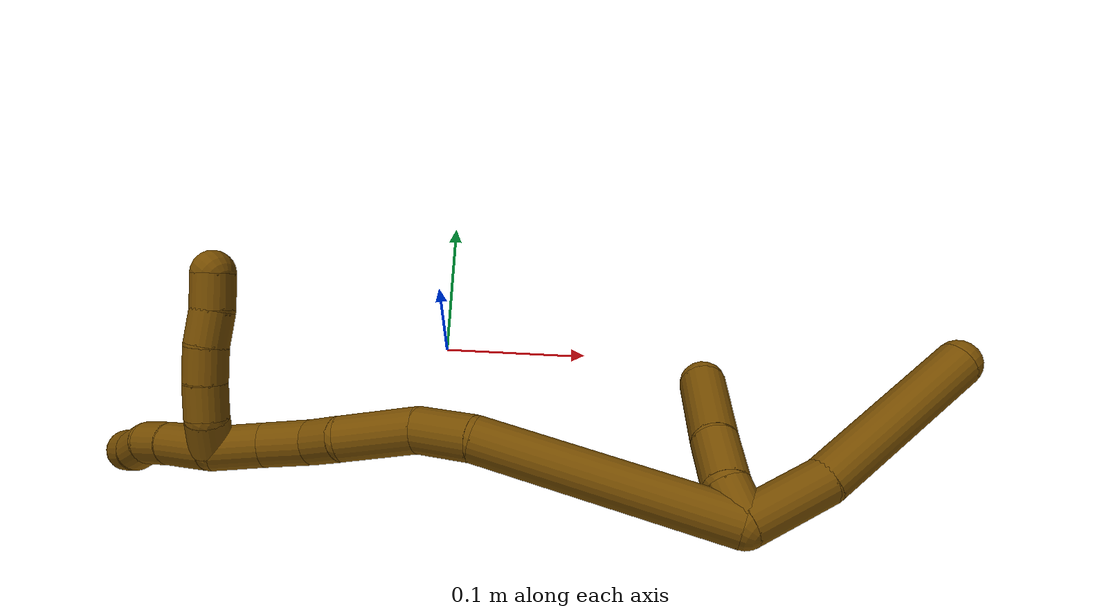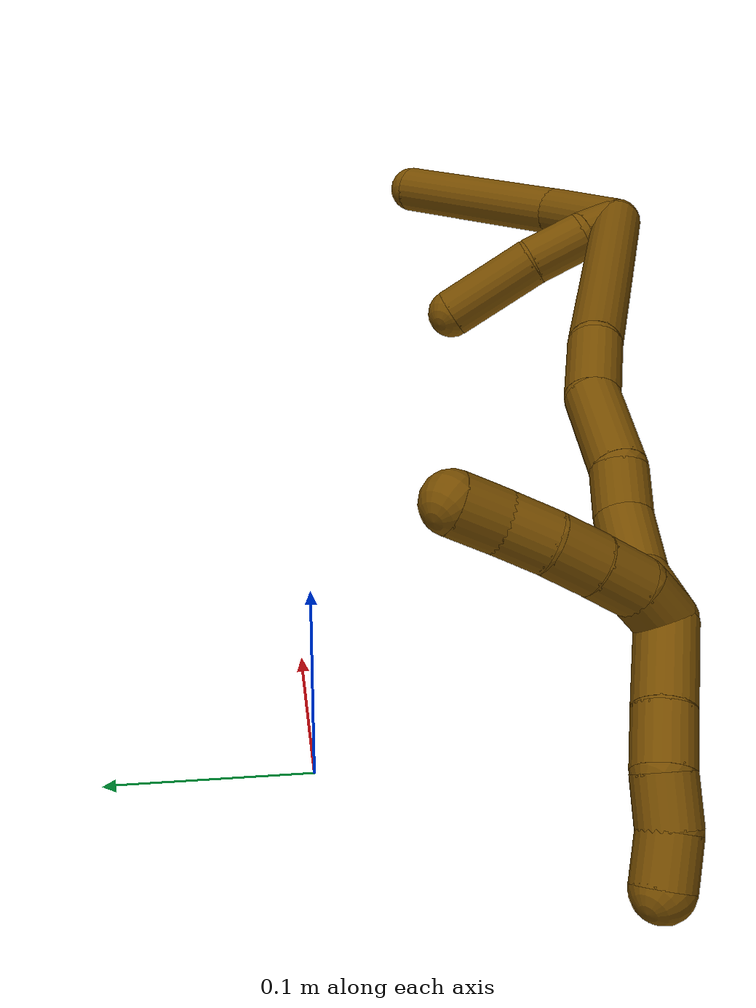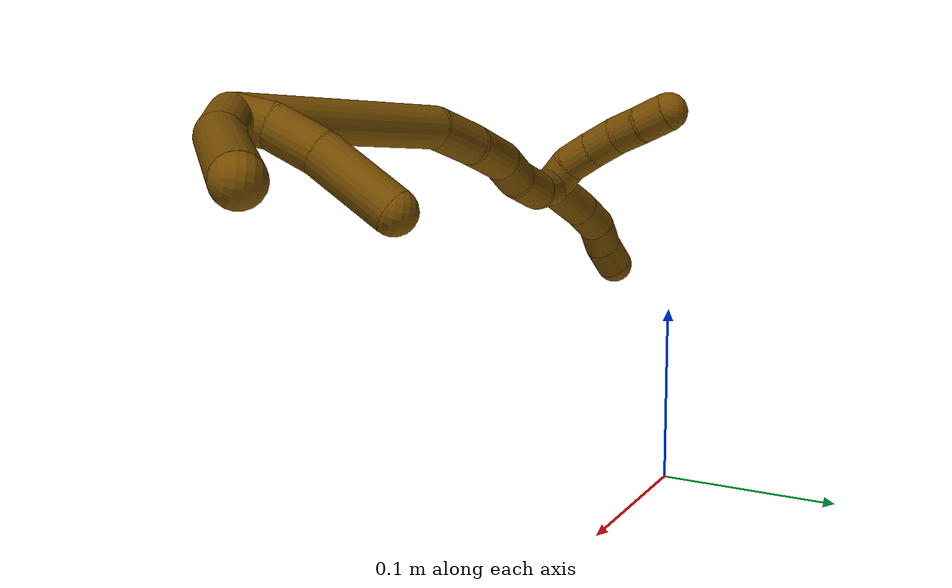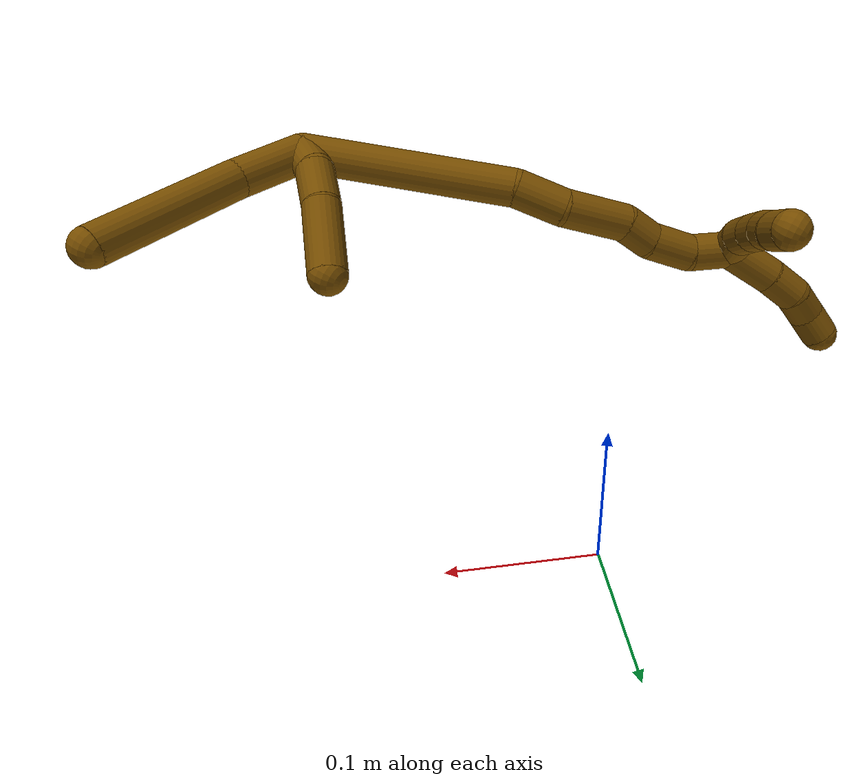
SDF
<sdf version="1.7">
 <world name="default">
  <model name="12">
   <static>0</static>
   <link name="12">
    <collision name="collision-cylinder-e_1_2_8">
     <pose>0.023023 0.000816 0.006586 -0.123267 1.29018 -0.092807</pose>
     <geometry><cylinder><radius>0.0125</radius><length>0.047921</length></cylinder></geometry>
     <surface>
      <friction><ode><mu>1.16</mu><mu2>1.16</mu2><slip1>0</slip1><slip2>0</slip2></ode></friction>
      <contact><ode><kp>1e+06</kp><kd>1</kd><max_vel>0</max_vel><min_depth>0.001</min_depth></ode></contact>
     </surface>
    </collision>
    <visual name="visual-cylinder-e_1_2_8">
     <pose>0.023023 0.000816 0.006586 -0.123267 1.29018 -0.092807</pose>
     <geometry><cylinder><radius>0.0125</radius><length>0.047921</length></cylinder></geometry>
     <material><ambient>0.466667 0.301961 0 1</ambient></material>
    </visual>
    <collision name="collision-cylinder-e_2_8_6">
     <pose>0.096427 0.007976 0.018328 -0.888293 1.40992 -0.769374</pose>
     <geometry><cylinder><radius>0.0125</radius><length>0.102079</length></cylinder></geometry>
     <surface>
      <friction><ode><mu>1.16</mu><mu2>1.16</mu2><slip1>0</slip1><slip2>0</slip2></ode></friction>
      <contact><ode><kp>1e+06</kp><kd>1</kd><max_vel>0</max_vel><min_depth>0.001</min_depth></ode></contact>
     </surface>
    </collision>
    <visual name="visual-cylinder-e_2_8_6">
     <pose>0.096427 0.007976 0.018328 -0.888293 1.40992 -0.769374</pose>
     <geometry><cylinder><radius>0.0125</radius><length>0.102079</length></cylinder></geometry>
     <material><ambient>0.466667 0.301961 0 1</ambient></material>
    </visual>
    <collision name="collision-cylinder-e_1_2_9">
     <pose>0.005091 0.000985 -0.009351 -3.03659 0.496264 -2.73255</pose>
     <geometry><cylinder><radius>0.0125</radius><length>0.021384</length></cylinder></geometry>
     <surface>
      <friction><ode><mu>1.16</mu><mu2>1.16</mu2><slip1>0</slip1><slip2>0</slip2></ode></friction>
      <contact><ode><kp>1e+06</kp><kd>1</kd><max_vel>0</max_vel><min_depth>0.001</min_depth></ode></contact>
     </surface>
    </collision>
    <visual name="visual-cylinder-e_1_2_9">
     <pose>0.005091 0.000985 -0.009351 -3.03659 0.496264 -2.73255</pose>
     <geometry><cylinder><radius>0.0125</radius><length>0.021384</length></cylinder></geometry>
     <material><ambient>0.466667 0.301961 0 1</ambient></material>
    </visual>
    <collision name="collision-cylinder-e_2_9_10">
     <pose>0.019918 0.00015 -0.029555 2.97538 0.724278 2.70874</pose>
     <geometry><cylinder><radius>0.0125</radius><length>0.029389</length></cylinder></geometry>
     <surface>
      <friction><ode><mu>1.16</mu><mu2>1.16</mu2><slip1>0</slip1><slip2>0</slip2></ode></friction>
      <contact><ode><kp>1e+06</kp><kd>1</kd><max_vel>0</max_vel><min_depth>0.001</min_depth></ode></contact>
     </surface>
    </collision>
    <visual name="visual-cylinder-e_2_9_10">
     <pose>0.019918 0.00015 -0.029555 2.97538 0.724278 2.70874</pose>
     <geometry><cylinder><radius>0.0125</radius><length>0.029389</length></cylinder></geometry>
     <material><ambient>0.466667 0.301961 0 1</ambient></material>
    </visual>
    <collision name="collision-cylinder-e_3_10_5">
     <pose>0.04686 -0.007976 -0.056842 2.77519 0.774032 2.28826</pose>
     <geometry><cylinder><radius>0.0125</radius><length>0.049227</length></cylinder></geometry>
     <surface>
      <friction><ode><mu>1.16</mu><mu2>1.16</mu2><slip1>0</slip1><slip2>0</slip2></ode></friction>
      <contact><ode><kp>1e+06</kp><kd>1</kd><max_vel>0</max_vel><min_depth>0.001</min_depth></ode></contact>
     </surface>
    </collision>
    <visual name="visual-cylinder-e_3_10_5">
     <pose>0.04686 -0.007976 -0.056842 2.77519 0.774032 2.28826</pose>
     <geometry><cylinder><radius>0.0125</radius><length>0.049227</length></cylinder></geometry>
     <material><ambient>0.466667 0.301961 0 1</ambient></material>
    </visual>
    <collision name="collision-cylinder-e_1_2_11">
     <pose>-0.028294 0.000396 -0.06333 -3.13534 -0.42016 3.11226</pose>
     <geometry><cylinder><radius>0.0125</radius><length>0.138728</length></cylinder></geometry>
     <surface>
      <friction><ode><mu>1.16</mu><mu2>1.16</mu2><slip1>0</slip1><slip2>0</slip2></ode></friction>
      <contact><ode><kp>1e+06</kp><kd>1</kd><max_vel>0</max_vel><min_depth>0.001</min_depth></ode></contact>
     </surface>
    </collision>
    <visual name="visual-cylinder-e_1_2_11">
     <pose>-0.028294 0.000396 -0.06333 -3.13534 -0.42016 3.11226</pose>
     <geometry><cylinder><radius>0.0125</radius><length>0.138728</length></cylinder></geometry>
     <material><ambient>0.466667 0.301961 0 1</ambient></material>
    </visual>
    <collision name="collision-cylinder-e_2_11_12">
     <pose>-0.062857 -0.003597 -0.141539 2.85474 -0.384062 -1.86384</pose>
     <geometry><cylinder><radius>0.0125</radius><length>0.033463</length></cylinder></geometry>
     <surface>
      <friction><ode><mu>1.16</mu><mu2>1.16</mu2><slip1>0</slip1><slip2>0</slip2></ode></friction>
      <contact><ode><kp>1e+06</kp><kd>1</kd><max_vel>0</max_vel><min_depth>0.001</min_depth></ode></contact>
     </surface>
    </collision>
    <visual name="visual-cylinder-e_2_11_12">
     <pose>-0.062857 -0.003597 -0.141539 2.85474 -0.384062 -1.86384</pose>
     <geometry><cylinder><radius>0.0125</radius><length>0.033463</length></cylinder></geometry>
     <material><ambient>0.466667 0.301961 0 1</ambient></material>
    </visual>
    <collision name="collision-cylinder-e_3_12_13">
     <pose>-0.082604 -0.01477 -0.17285 2.75007 -0.648651 -2.07578</pose>
     <geometry><cylinder><radius>0.0125</radius><length>0.044619</length></cylinder></geometry>
     <surface>
      <friction><ode><mu>1.16</mu><mu2>1.16</mu2><slip1>0</slip1><slip2>0</slip2></ode></friction>
      <contact><ode><kp>1e+06</kp><kd>1</kd><max_vel>0</max_vel><min_depth>0.001</min_depth></ode></contact>
     </surface>
    </collision>
    <visual name="visual-cylinder-e_3_12_13">
     <pose>-0.082604 -0.01477 -0.17285 2.75007 -0.648651 -2.07578</pose>
     <geometry><cylinder><radius>0.0125</radius><length>0.044619</length></cylinder></geometry>
     <material><ambient>0.466667 0.301961 0 1</ambient></material>
    </visual>
    <collision name="collision-cylinder-e_4_13_14">
     <pose>-0.100153 -0.02749 -0.197859 2.5361 -0.372228 -1.085</pose>
     <geometry><cylinder><radius>0.0125</radius><length>0.022392</length></cylinder></geometry>
     <surface>
      <friction><ode><mu>1.16</mu><mu2>1.16</mu2><slip1>0</slip1><slip2>0</slip2></ode></friction>
      <contact><ode><kp>1e+06</kp><kd>1</kd><max_vel>0</max_vel><min_depth>0.001</min_depth></ode></contact>
     </surface>
    </collision>
    <visual name="visual-cylinder-e_4_13_14">
     <pose>-0.100153 -0.02749 -0.197859 2.5361 -0.372228 -1.085</pose>
     <geometry><cylinder><radius>0.0125</radius><length>0.022392</length></cylinder></geometry>
     <material><ambient>0.466667 0.301961 0 1</ambient></material>
    </visual>
    <collision name="collision-cylinder-e_5_14_15">
     <pose>-0.11257 -0.038341 -0.218431 2.75278 -0.571896 -1.96141</pose>
     <geometry><cylinder><radius>0.0125</radius><length>0.030836</length></cylinder></geometry>
     <surface>
      <friction><ode><mu>1.16</mu><mu2>1.16</mu2><slip1>0</slip1><slip2>0</slip2></ode></friction>
      <contact><ode><kp>1e+06</kp><kd>1</kd><max_vel>0</max_vel><min_depth>0.001</min_depth></ode></contact>
     </surface>
    </collision>
    <visual name="visual-cylinder-e_5_14_15">
     <pose>-0.11257 -0.038341 -0.218431 2.75278 -0.571896 -1.96141</pose>
     <geometry><cylinder><radius>0.0125</radius><length>0.030836</length></cylinder></geometry>
     <material><ambient>0.466667 0.301961 0 1</ambient></material>
    </visual>
    <collision name="collision-cylinder-e_6_15_1">
     <pose>-0.131924 -0.044086 -0.240554 3.05979 -0.825549 -2.95524</pose>
     <geometry><cylinder><radius>0.0125</radius><length>0.029961</length></cylinder></geometry>
     <surface>
      <friction><ode><mu>1.16</mu><mu2>1.16</mu2><slip1>0</slip1><slip2>0</slip2></ode></friction>
      <contact><ode><kp>1e+06</kp><kd>1</kd><max_vel>0</max_vel><min_depth>0.001</min_depth></ode></contact>
     </surface>
    </collision>
    <visual name="visual-cylinder-e_6_15_1">
     <pose>-0.131924 -0.044086 -0.240554 3.05979 -0.825549 -2.95524</pose>
     <geometry><cylinder><radius>0.0125</radius><length>0.029961</length></cylinder></geometry>
     <material><ambient>0.466667 0.301961 0 1</ambient></material>
    </visual>
    <collision name="collision-cylinder-e_1_1_16">
     <pose>-0.148305 -0.05237 -0.266115 2.69175 -0.303677 -1.17896</pose>
     <geometry><cylinder><radius>0.0125</radius><length>0.035927</length></cylinder></geometry>
     <surface>
      <friction><ode><mu>1.16</mu><mu2>1.16</mu2><slip1>0</slip1><slip2>0</slip2></ode></friction>
      <contact><ode><kp>1e+06</kp><kd>1</kd><max_vel>0</max_vel><min_depth>0.001</min_depth></ode></contact>
     </surface>
    </collision>
    <visual name="visual-cylinder-e_1_1_16">
     <pose>-0.148305 -0.05237 -0.266115 2.69175 -0.303677 -1.17896</pose>
     <geometry><cylinder><radius>0.0125</radius><length>0.035927</length></cylinder></geometry>
     <material><ambient>0.466667 0.301961 0 1</ambient></material>
    </visual>
    <collision name="collision-cylinder-e_2_16_17">
     <pose>-0.1569 -0.065668 -0.291222 2.59797 -0.277902 -0.930144</pose>
     <geometry><cylinder><radius>0.0125</radius><length>0.0235</length></cylinder></geometry>
     <surface>
      <friction><ode><mu>1.16</mu><mu2>1.16</mu2><slip1>0</slip1><slip2>0</slip2></ode></friction>
      <contact><ode><kp>1e+06</kp><kd>1</kd><max_vel>0</max_vel><min_depth>0.001</min_depth></ode></contact>
     </surface>
    </collision>
    <visual name="visual-cylinder-e_2_16_17">
     <pose>-0.1569 -0.065668 -0.291222 2.59797 -0.277902 -0.930144</pose>
     <geometry><cylinder><radius>0.0125</radius><length>0.0235</length></cylinder></geometry>
     <material><ambient>0.466667 0.301961 0 1</ambient></material>
    </visual>
    <collision name="collision-cylinder-e_3_17_18">
     <pose>-0.162677 -0.079137 -0.307284 2.2685 -0.251142 -0.528467</pose>
     <geometry><cylinder><radius>0.0125</radius><length>0.020546</length></cylinder></geometry>
     <surface>
      <friction><ode><mu>1.16</mu><mu2>1.16</mu2><slip1>0</slip1><slip2>0</slip2></ode></friction>
      <contact><ode><kp>1e+06</kp><kd>1</kd><max_vel>0</max_vel><min_depth>0.001</min_depth></ode></contact>
     </surface>
    </collision>
    <visual name="visual-cylinder-e_3_17_18">
     <pose>-0.162677 -0.079137 -0.307284 2.2685 -0.251142 -0.528467</pose>
     <geometry><cylinder><radius>0.0125</radius><length>0.020546</length></cylinder></geometry>
     <material><ambient>0.466667 0.301961 0 1</ambient></material>
    </visual>
    <collision name="collision-cylinder-e_4_18_4">
     <pose>-0.165929 -0.093455 -0.321093 2.40741 -0.069935 -0.181452</pose>
     <geometry><cylinder><radius>0.0125</radius><length>0.020027</length></cylinder></geometry>
     <surface>
      <friction><ode><mu>1.16</mu><mu2>1.16</mu2><slip1>0</slip1><slip2>0</slip2></ode></friction>
      <contact><ode><kp>1e+06</kp><kd>1</kd><max_vel>0</max_vel><min_depth>0.001</min_depth></ode></contact>
     </surface>
    </collision>
    <visual name="visual-cylinder-e_4_18_4">
     <pose>-0.165929 -0.093455 -0.321093 2.40741 -0.069935 -0.181452</pose>
     <geometry><cylinder><radius>0.0125</radius><length>0.020027</length></cylinder></geometry>
     <material><ambient>0.466667 0.301961 0 1</ambient></material>
    </visual>
    <collision name="collision-cylinder-e_1_1_19">
     <pose>-0.140335 -0.035582 -0.253151 -1.82972 0.262861 -0.340209</pose>
     <geometry><cylinder><radius>0.0125</radius><length>0.02</length></cylinder></geometry>
     <surface>
      <friction><ode><mu>1.16</mu><mu2>1.16</mu2><slip1>0</slip1><slip2>0</slip2></ode></friction>
      <contact><ode><kp>1e+06</kp><kd>1</kd><max_vel>0</max_vel><min_depth>0.001</min_depth></ode></contact>
     </surface>
    </collision>
    <visual name="visual-cylinder-e_1_1_19">
     <pose>-0.140335 -0.035582 -0.253151 -1.82972 0.262861 -0.340209</pose>
     <geometry><cylinder><radius>0.0125</radius><length>0.02</length></cylinder></geometry>
     <material><ambient>0.466667 0.301961 0 1</ambient></material>
    </visual>
    <collision name="collision-cylinder-e_2_19_20">
     <pose>-0.133244 -0.018493 -0.260062 -2.09068 0.465945 -0.776867</pose>
     <geometry><cylinder><radius>0.0125</radius><length>0.02</length></cylinder></geometry>
     <surface>
      <friction><ode><mu>1.16</mu><mu2>1.16</mu2><slip1>0</slip1><slip2>0</slip2></ode></friction>
      <contact><ode><kp>1e+06</kp><kd>1</kd><max_vel>0</max_vel><min_depth>0.001</min_depth></ode></contact>
     </surface>
    </collision>
    <visual name="visual-cylinder-e_2_19_20">
     <pose>-0.133244 -0.018493 -0.260062 -2.09068 0.465945 -0.776867</pose>
     <geometry><cylinder><radius>0.0125</radius><length>0.02</length></cylinder></geometry>
     <material><ambient>0.466667 0.301961 0 1</ambient></material>
    </visual>
    <collision name="collision-cylinder-e_3_20_21">
     <pose>-0.123559 -0.003321 -0.268742 -2.09016 0.545953 -0.89918</pose>
     <geometry><cylinder><radius>0.0125</radius><length>0.02</length></cylinder></geometry>
     <surface>
      <friction><ode><mu>1.16</mu><mu2>1.16</mu2><slip1>0</slip1><slip2>0</slip2></ode></friction>
      <contact><ode><kp>1e+06</kp><kd>1</kd><max_vel>0</max_vel><min_depth>0.001</min_depth></ode></contact>
     </surface>
    </collision>
    <visual name="visual-cylinder-e_3_20_21">
     <pose>-0.123559 -0.003321 -0.268742 -2.09016 0.545953 -0.89918</pose>
     <geometry><cylinder><radius>0.0125</radius><length>0.02</length></cylinder></geometry>
     <material><ambient>0.466667 0.301961 0 1</ambient></material>
    </visual>
    <collision name="collision-cylinder-e_4_21_22">
     <pose>-0.111923 0.010708 -0.27683 -2.09794 0.70022 -1.1316</pose>
     <geometry><cylinder><radius>0.0125</radius><length>0.02</length></cylinder></geometry>
     <surface>
      <friction><ode><mu>1.16</mu><mu2>1.16</mu2><slip1>0</slip1><slip2>0</slip2></ode></friction>
      <contact><ode><kp>1e+06</kp><kd>1</kd><max_vel>0</max_vel><min_depth>0.001</min_depth></ode></contact>
     </surface>
    </collision>
    <visual name="visual-cylinder-e_4_21_22">
     <pose>-0.111923 0.010708 -0.27683 -2.09794 0.70022 -1.1316</pose>
     <geometry><cylinder><radius>0.0125</radius><length>0.02</length></cylinder></geometry>
     <material><ambient>0.466667 0.301961 0 1</ambient></material>
    </visual>
    <collision name="collision-cylinder-e_5_22_3">
     <pose>-0.100161 0.024285 -0.28549 -2.1752 0.560693 -1.0038</pose>
     <geometry><cylinder><radius>0.0125</radius><length>0.02</length></cylinder></geometry>
     <surface>
      <friction><ode><mu>1.16</mu><mu2>1.16</mu2><slip1>0</slip1><slip2>0</slip2></ode></friction>
      <contact><ode><kp>1e+06</kp><kd>1</kd><max_vel>0</max_vel><min_depth>0.001</min_depth></ode></contact>
     </surface>
    </collision>
    <visual name="visual-cylinder-e_5_22_3">
     <pose>-0.100161 0.024285 -0.28549 -2.1752 0.560693 -1.0038</pose>
     <geometry><cylinder><radius>0.0125</radius><length>0.02</length></cylinder></geometry>
     <material><ambient>0.466667 0.301961 0 1</ambient></material>
    </visual>
    <collision name="collision-sphere-3">
     <pose>-0.094843 0.031254 -0.290303 0 -0 0</pose>
     <geometry><sphere><radius>0.0125</radius></sphere></geometry>
     <surface>
      <friction><ode><mu>1.16</mu><mu2>1.16</mu2><slip1>0</slip1><slip2>0</slip2></ode></friction>
      <contact><ode><kp>1e+06</kp><kd>1</kd><max_vel>0</max_vel><min_depth>0.001</min_depth></ode></contact>
     </surface>
    </collision>
    <visual name="visual-sphere-3">
     <pose>-0.094843 0.031254 -0.290303 0 -0 0</pose>
     <geometry><sphere><radius>0.0125</radius></sphere></geometry>
     <material><ambient>0.466667 0.301961 0 1</ambient></material>
    </visual>
    <collision name="collision-sphere-22">
     <pose>-0.105479 0.017317 -0.280677 0 -0 0</pose>
     <geometry><sphere><radius>0.0125</radius></sphere></geometry>
     <surface>
      <friction><ode><mu>1.16</mu><mu2>1.16</mu2><slip1>0</slip1><slip2>0</slip2></ode></friction>
      <contact><ode><kp>1e+06</kp><kd>1</kd><max_vel>0</max_vel><min_depth>0.001</min_depth></ode></contact>
     </surface>
    </collision>
    <visual name="visual-sphere-22">
     <pose>-0.105479 0.017317 -0.280677 0 -0 0</pose>
     <geometry><sphere><radius>0.0125</radius></sphere></geometry>
     <material><ambient>0.466667 0.301961 0 1</ambient></material>
    </visual>
    <collision name="collision-sphere-21">
     <pose>-0.118367 0.004099 -0.272983 0 -0 0</pose>
     <geometry><sphere><radius>0.0125</radius></sphere></geometry>
     <surface>
      <friction><ode><mu>1.16</mu><mu2>1.16</mu2><slip1>0</slip1><slip2>0</slip2></ode></friction>
      <contact><ode><kp>1e+06</kp><kd>1</kd><max_vel>0</max_vel><min_depth>0.001</min_depth></ode></contact>
     </surface>
    </collision>
    <visual name="visual-sphere-21">
     <pose>-0.118367 0.004099 -0.272983 0 -0 0</pose>
     <geometry><sphere><radius>0.0125</radius></sphere></geometry>
     <material><ambient>0.466667 0.301961 0 1</ambient></material>
    </visual>
    <collision name="collision-sphere-20">
     <pose>-0.128751 -0.01074 -0.2645 0 -0 0</pose>
     <geometry><sphere><radius>0.0125</radius></sphere></geometry>
     <surface>
      <friction><ode><mu>1.16</mu><mu2>1.16</mu2><slip1>0</slip1><slip2>0</slip2></ode></friction>
      <contact><ode><kp>1e+06</kp><kd>1</kd><max_vel>0</max_vel><min_depth>0.001</min_depth></ode></contact>
     </surface>
    </collision>
    <visual name="visual-sphere-20">
     <pose>-0.128751 -0.01074 -0.2645 0 -0 0</pose>
     <geometry><sphere><radius>0.0125</radius></sphere></geometry>
     <material><ambient>0.466667 0.301961 0 1</ambient></material>
    </visual>
    <collision name="collision-sphere-19">
     <pose>-0.137737 -0.026247 -0.255624 0 -0 0</pose>
     <geometry><sphere><radius>0.0125</radius></sphere></geometry>
     <surface>
      <friction><ode><mu>1.16</mu><mu2>1.16</mu2><slip1>0</slip1><slip2>0</slip2></ode></friction>
      <contact><ode><kp>1e+06</kp><kd>1</kd><max_vel>0</max_vel><min_depth>0.001</min_depth></ode></contact>
     </surface>
    </collision>
    <visual name="visual-sphere-19">
     <pose>-0.137737 -0.026247 -0.255624 0 -0 0</pose>
     <geometry><sphere><radius>0.0125</radius></sphere></geometry>
     <material><ambient>0.466667 0.301961 0 1</ambient></material>
    </visual>
    <collision name="collision-sphere-5">
     <pose>0.064066 -0.014282 -0.073275 0 -0 0</pose>
     <geometry><sphere><radius>0.0125</radius></sphere></geometry>
     <surface>
      <friction><ode><mu>1.16</mu><mu2>1.16</mu2><slip1>0</slip1><slip2>0</slip2></ode></friction>
      <contact><ode><kp>1e+06</kp><kd>1</kd><max_vel>0</max_vel><min_depth>0.001</min_depth></ode></contact>
     </surface>
    </collision>
    <visual name="visual-sphere-5">
     <pose>0.064066 -0.014282 -0.073275 0 -0 0</pose>
     <geometry><sphere><radius>0.0125</radius></sphere></geometry>
     <material><ambient>0.466667 0.301961 0 1</ambient></material>
    </visual>
    <collision name="collision-sphere-10">
     <pose>0.029655 -0.001671 -0.040409 0 -0 0</pose>
     <geometry><sphere><radius>0.0125</radius></sphere></geometry>
     <surface>
      <friction><ode><mu>1.16</mu><mu2>1.16</mu2><slip1>0</slip1><slip2>0</slip2></ode></friction>
      <contact><ode><kp>1e+06</kp><kd>1</kd><max_vel>0</max_vel><min_depth>0.001</min_depth></ode></contact>
     </surface>
    </collision>
    <visual name="visual-sphere-10">
     <pose>0.029655 -0.001671 -0.040409 0 -0 0</pose>
     <geometry><sphere><radius>0.0125</radius></sphere></geometry>
     <material><ambient>0.466667 0.301961 0 1</ambient></material>
    </visual>
    <collision name="collision-sphere-6">
     <pose>0.146807 0.014321 0.023485 0 -0 0</pose>
     <geometry><sphere><radius>0.0125</radius></sphere></geometry>
     <surface>
      <friction><ode><mu>1.16</mu><mu2>1.16</mu2><slip1>0</slip1><slip2>0</slip2></ode></friction>
      <contact><ode><kp>1e+06</kp><kd>1</kd><max_vel>0</max_vel><min_depth>0.001</min_depth></ode></contact>
     </surface>
    </collision>
    <visual name="visual-sphere-6">
     <pose>0.146807 0.014321 0.023485 0 -0 0</pose>
     <geometry><sphere><radius>0.0125</radius></sphere></geometry>
     <material><ambient>0.466667 0.301961 0 1</ambient></material>
    </visual>
    <collision name="collision-sphere-9">
     <pose>0.010182 0.001971 -0.018701 0 -0 0</pose>
     <geometry><sphere><radius>0.0125</radius></sphere></geometry>
     <surface>
      <friction><ode><mu>1.16</mu><mu2>1.16</mu2><slip1>0</slip1><slip2>0</slip2></ode></friction>
      <contact><ode><kp>1e+06</kp><kd>1</kd><max_vel>0</max_vel><min_depth>0.001</min_depth></ode></contact>
     </surface>
    </collision>
    <visual name="visual-sphere-9">
     <pose>0.010182 0.001971 -0.018701 0 -0 0</pose>
     <geometry><sphere><radius>0.0125</radius></sphere></geometry>
     <material><ambient>0.466667 0.301961 0 1</ambient></material>
    </visual>
    <collision name="collision-sphere-2">
     <geometry><sphere><radius>0.0125</radius></sphere></geometry>
     <surface>
      <friction><ode><mu>1.16</mu><mu2>1.16</mu2><slip1>0</slip1><slip2>0</slip2></ode></friction>
      <contact><ode><kp>1e+06</kp><kd>1</kd><max_vel>0</max_vel><min_depth>0.001</min_depth></ode></contact>
     </surface>
    </collision>
    <visual name="visual-sphere-2">
     <geometry><sphere><radius>0.0125</radius></sphere></geometry>
     <material><ambient>0.466667 0.301961 0 1</ambient></material>
    </visual>
    <collision name="collision-sphere-8">
     <pose>0.046047 0.001632 0.013171 0 -0 0</pose>
     <geometry><sphere><radius>0.0125</radius></sphere></geometry>
     <surface>
      <friction><ode><mu>1.16</mu><mu2>1.16</mu2><slip1>0</slip1><slip2>0</slip2></ode></friction>
      <contact><ode><kp>1e+06</kp><kd>1</kd><max_vel>0</max_vel><min_depth>0.001</min_depth></ode></contact>
     </surface>
    </collision>
    <visual name="visual-sphere-8">
     <pose>0.046047 0.001632 0.013171 0 -0 0</pose>
     <geometry><sphere><radius>0.0125</radius></sphere></geometry>
     <material><ambient>0.466667 0.301961 0 1</ambient></material>
    </visual>
    <collision name="collision-sphere-11">
     <pose>-0.056588 0.000792 -0.12666 0 -0 0</pose>
     <geometry><sphere><radius>0.0125</radius></sphere></geometry>
     <surface>
      <friction><ode><mu>1.16</mu><mu2>1.16</mu2><slip1>0</slip1><slip2>0</slip2></ode></friction>
      <contact><ode><kp>1e+06</kp><kd>1</kd><max_vel>0</max_vel><min_depth>0.001</min_depth></ode></contact>
     </surface>
    </collision>
    <visual name="visual-sphere-11">
     <pose>-0.056588 0.000792 -0.12666 0 -0 0</pose>
     <geometry><sphere><radius>0.0125</radius></sphere></geometry>
     <material><ambient>0.466667 0.301961 0 1</ambient></material>
    </visual>
    <collision name="collision-sphere-12">
     <pose>-0.069127 -0.007986 -0.156417 0 -0 0</pose>
     <geometry><sphere><radius>0.0125</radius></sphere></geometry>
     <surface>
      <friction><ode><mu>1.16</mu><mu2>1.16</mu2><slip1>0</slip1><slip2>0</slip2></ode></friction>
      <contact><ode><kp>1e+06</kp><kd>1</kd><max_vel>0</max_vel><min_depth>0.001</min_depth></ode></contact>
     </surface>
    </collision>
    <visual name="visual-sphere-12">
     <pose>-0.069127 -0.007986 -0.156417 0 -0 0</pose>
     <geometry><sphere><radius>0.0125</radius></sphere></geometry>
     <material><ambient>0.466667 0.301961 0 1</ambient></material>
    </visual>
    <collision name="collision-sphere-13">
     <pose>-0.096081 -0.021554 -0.189284 0 -0 0</pose>
     <geometry><sphere><radius>0.0125</radius></sphere></geometry>
     <surface>
      <friction><ode><mu>1.16</mu><mu2>1.16</mu2><slip1>0</slip1><slip2>0</slip2></ode></friction>
      <contact><ode><kp>1e+06</kp><kd>1</kd><max_vel>0</max_vel><min_depth>0.001</min_depth></ode></contact>
     </surface>
    </collision>
    <visual name="visual-sphere-13">
     <pose>-0.096081 -0.021554 -0.189284 0 -0 0</pose>
     <geometry><sphere><radius>0.0125</radius></sphere></geometry>
     <material><ambient>0.466667 0.301961 0 1</ambient></material>
    </visual>
    <collision name="collision-sphere-14">
     <pose>-0.104225 -0.033427 -0.206434 0 -0 0</pose>
     <geometry><sphere><radius>0.0125</radius></sphere></geometry>
     <surface>
      <friction><ode><mu>1.16</mu><mu2>1.16</mu2><slip1>0</slip1><slip2>0</slip2></ode></friction>
      <contact><ode><kp>1e+06</kp><kd>1</kd><max_vel>0</max_vel><min_depth>0.001</min_depth></ode></contact>
     </surface>
    </collision>
    <visual name="visual-sphere-14">
     <pose>-0.104225 -0.033427 -0.206434 0 -0 0</pose>
     <geometry><sphere><radius>0.0125</radius></sphere></geometry>
     <material><ambient>0.466667 0.301961 0 1</ambient></material>
    </visual>
    <collision name="collision-sphere-15">
     <pose>-0.120915 -0.043256 -0.230429 0 -0 0</pose>
     <geometry><sphere><radius>0.0125</radius></sphere></geometry>
     <surface>
      <friction><ode><mu>1.16</mu><mu2>1.16</mu2><slip1>0</slip1><slip2>0</slip2></ode></friction>
      <contact><ode><kp>1e+06</kp><kd>1</kd><max_vel>0</max_vel><min_depth>0.001</min_depth></ode></contact>
     </surface>
    </collision>
    <visual name="visual-sphere-15">
     <pose>-0.120915 -0.043256 -0.230429 0 -0 0</pose>
     <geometry><sphere><radius>0.0125</radius></sphere></geometry>
     <material><ambient>0.466667 0.301961 0 1</ambient></material>
    </visual>
    <collision name="collision-sphere-1">
     <pose>-0.142934 -0.044916 -0.250679 0 -0 0</pose>
     <geometry><sphere><radius>0.0125</radius></sphere></geometry>
     <surface>
      <friction><ode><mu>1.16</mu><mu2>1.16</mu2><slip1>0</slip1><slip2>0</slip2></ode></friction>
      <contact><ode><kp>1e+06</kp><kd>1</kd><max_vel>0</max_vel><min_depth>0.001</min_depth></ode></contact>
     </surface>
    </collision>
    <visual name="visual-sphere-1">
     <pose>-0.142934 -0.044916 -0.250679 0 -0 0</pose>
     <geometry><sphere><radius>0.0125</radius></sphere></geometry>
     <material><ambient>0.466667 0.301961 0 1</ambient></material>
    </visual>
    <collision name="collision-sphere-18">
     <pose>-0.16523 -0.086763 -0.313677 0 -0 0</pose>
     <geometry><sphere><radius>0.0125</radius></sphere></geometry>
     <surface>
      <friction><ode><mu>1.16</mu><mu2>1.16</mu2><slip1>0</slip1><slip2>0</slip2></ode></friction>
      <contact><ode><kp>1e+06</kp><kd>1</kd><max_vel>0</max_vel><min_depth>0.001</min_depth></ode></contact>
     </surface>
    </collision>
    <visual name="visual-sphere-18">
     <pose>-0.16523 -0.086763 -0.313677 0 -0 0</pose>
     <geometry><sphere><radius>0.0125</radius></sphere></geometry>
     <material><ambient>0.466667 0.301961 0 1</ambient></material>
    </visual>
    <collision name="collision-sphere-16">
     <pose>-0.153677 -0.059823 -0.281551 0 -0 0</pose>
     <geometry><sphere><radius>0.0125</radius></sphere></geometry>
     <surface>
      <friction><ode><mu>1.16</mu><mu2>1.16</mu2><slip1>0</slip1><slip2>0</slip2></ode></friction>
      <contact><ode><kp>1e+06</kp><kd>1</kd><max_vel>0</max_vel><min_depth>0.001</min_depth></ode></contact>
     </surface>
    </collision>
    <visual name="visual-sphere-16">
     <pose>-0.153677 -0.059823 -0.281551 0 -0 0</pose>
     <geometry><sphere><radius>0.0125</radius></sphere></geometry>
     <material><ambient>0.466667 0.301961 0 1</ambient></material>
    </visual>
    <collision name="collision-sphere-17">
     <pose>-0.160124 -0.071512 -0.300892 0 -0 0</pose>
     <geometry><sphere><radius>0.0125</radius></sphere></geometry>
     <surface>
      <friction><ode><mu>1.16</mu><mu2>1.16</mu2><slip1>0</slip1><slip2>0</slip2></ode></friction>
      <contact><ode><kp>1e+06</kp><kd>1</kd><max_vel>0</max_vel><min_depth>0.001</min_depth></ode></contact>
     </surface>
    </collision>
    <visual name="visual-sphere-17">
     <pose>-0.160124 -0.071512 -0.300892 0 -0 0</pose>
     <geometry><sphere><radius>0.0125</radius></sphere></geometry>
     <material><ambient>0.466667 0.301961 0 1</ambient></material>
    </visual>
    <collision name="collision-sphere-4">
     <pose>-0.166629 -0.100148 -0.328509 0 -0 0</pose>
     <geometry><sphere><radius>0.0125</radius></sphere></geometry>
     <surface>
      <friction><ode><mu>1.16</mu><mu2>1.16</mu2><slip1>0</slip1><slip2>0</slip2></ode></friction>
      <contact><ode><kp>1e+06</kp><kd>1</kd><max_vel>0</max_vel><min_depth>0.001</min_depth></ode></contact>
     </surface>
    </collision>
    <visual name="visual-sphere-4">
     <pose>-0.166629 -0.100148 -0.328509 0 -0 0</pose>
     <geometry><sphere><radius>0.0125</radius></sphere></geometry>
     <material><ambient>0.466667 0.301961 0 1</ambient></material>
    </visual>
    <inertial>
     <pose>-0.044398 -0.014303 -0.129762 0 -0 0</pose>
     <mass>0.75</mass>
     <inertia>
      <ixx>-0.000218</ixx>
      <ixy>0</ixy>
      <ixz>0</ixz>
      <iyy>0.000327</iyy>
      <iyz>0</iyz>
      <izz>-4.5e-05</izz>
     </inertia>
    </inertial>
   </link>
   <pose>0.164599 -0.173395 0.216159 1.33993 0.210425 0.806052</pose>
  </model>
 </world>
</sdf>
